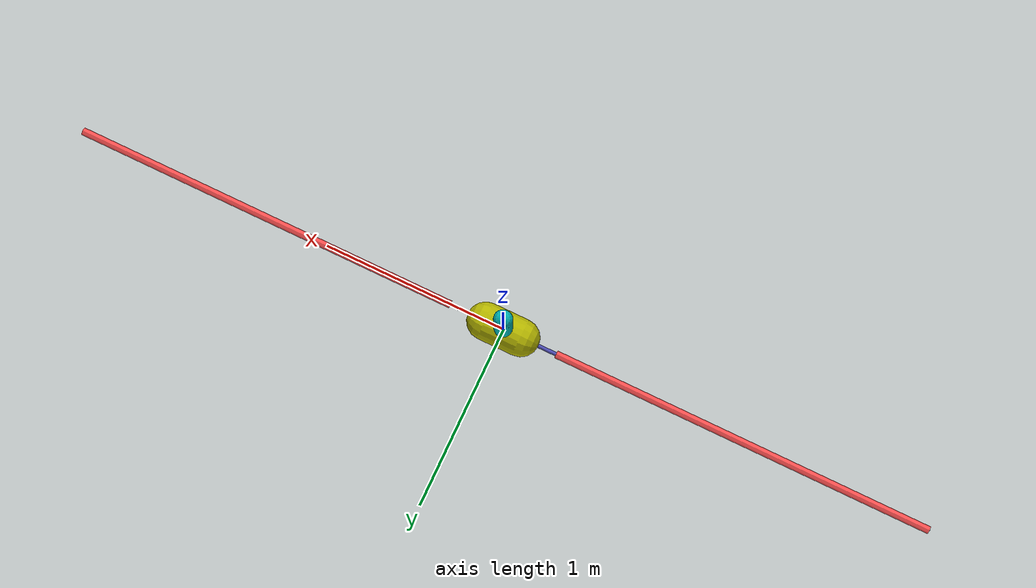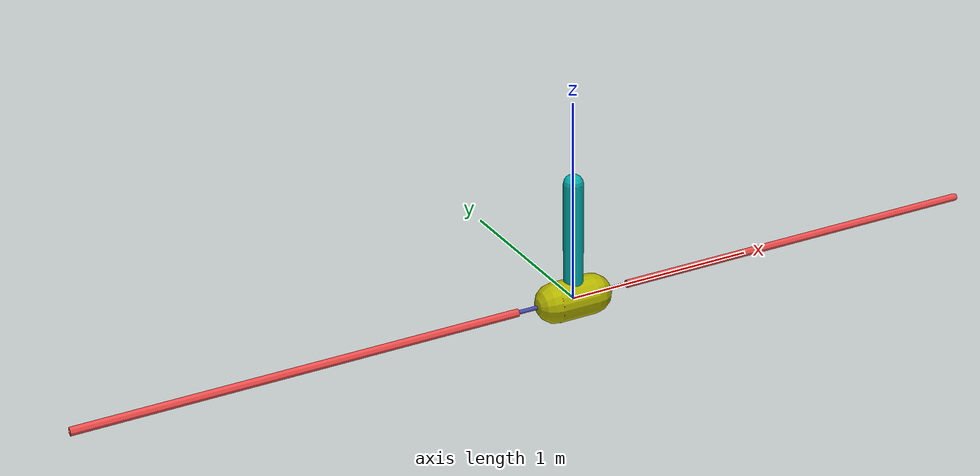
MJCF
<mujoco model="inverted pendulum">
	<compiler inertiafromgeom="true"/>
	<default>
		<joint armature="0" damping="1" limited="true"/>
		<geom contype="0" friction="1 0.1 0.1" rgba="0.7 0.7 0 1"/>
		<site rgba=".9 .9 .9 1"/>
	</default>
	<option gravity="0 0 -9.81" integrator="RK4" timestep="0.001" solver="Newton" iterations="1" ls_iterations="4"/>
	<size nstack="3000"/>
	<worldbody>
		<!--geom name="ground" type="plane" pos="0 0 0" /-->
		<geom name="rail" pos="0 0 0" quat="0.707 0 0.707 0" rgba="0.3 0.3 0.7 1" size="0.01 1" type="capsule"/>
		<site name="mtu1_s1" pos="-2.4 0 0"/>
		<site name="mtu2_s1" pos="2.4 0 0"/>
		<body name="cart" pos="0 0 0">
			<joint axis="1 0 0" limited="true" name="slider" pos="0 0 0" range="-0.5 0.5" type="slide" damping="1" />
			<geom name="cart" pos="0 0 0" quat="0.707 0 0.707 0" size="0.1 0.1" type="capsule"/>
			<site name="mtu1_s2" pos="-0.3 0 0"/>
			<site name="mtu2_s2" pos="0.3 0 0"/>
			<body name="pole" pos="0 0 0">
				<joint axis="0 1 0" name="hinge" pos="0 0 0" range="-90 90" type="hinge"/>
				<geom fromto="0 0 0 0.001 0 0.6" name="cpole" rgba="0 0.7 0.7 1" size="0.049 0.3" type="capsule"/>
			</body>
		</body>
	</worldbody>

	<biomtu>
		<spatial name="mtu_1" width=".02" tendon_slack_l="0.9" max_isometric_force="2000"
			max_contraction_velocity="10.0" optimal_fiber_length="0.9"
			optimal_pennation_angle="0.052360" rgba=".95 .3 .3 1"
			virtual_mass="1">
			<site site="mtu1_s1"/>
			<site site="mtu1_s2"/>
		</spatial>

		<spatial name="mtu_2" width=".02" tendon_slack_l="0.9" max_isometric_force="2000"
			max_contraction_velocity="10.0" optimal_fiber_length="0.9"
			optimal_pennation_angle="0.052360" rgba=".95 .3 .3 1"
			virtual_mass="1">
			<site site="mtu2_s1"/>
			<site site="mtu2_s2"/>
		</spatial>
	</biomtu>

	<tendon>
		<spatial name="tendon1" springlength="10" stiffness="0" limited="false" width=".02" rgba=".95 .3 .3 1">
			<site site="mtu1_s1"/>
			<site site="mtu1_s2"/>
		</spatial>

		<spatial name="tendon2" springlength="10" stiffness="0" limited="false" width=".02" rgba=".95 .3 .3 1">
			<site site="mtu2_s1"/>
			<site site="mtu2_s2"/>
		</spatial>

	</tendon>
</mujoco>
